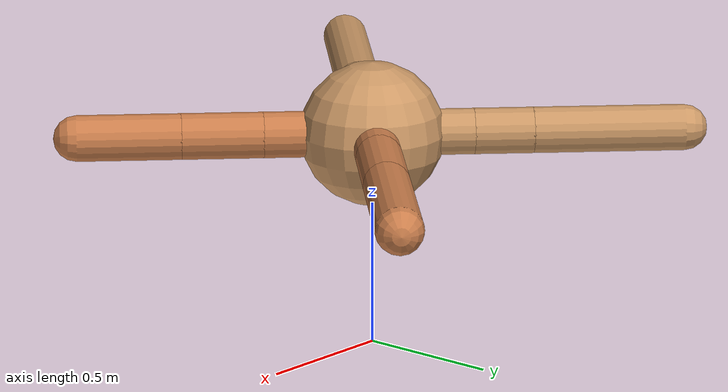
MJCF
<mujoco model="ant">
  <compiler angle="degree" coordinate="local" inertiafromgeom="true" />
  <option integrator="RK4" timestep="0.01" />
  <custom>
    <numeric data="0.0 0.0 0.55 1.0 0.0 0.0 0.0 0.0 1.0 0.0 -1.0 0.0 -1.0 0.0 1.0" name="init_qpos" />
  </custom>
  <default>
    <joint armature="1" damping="1" limited="true" />
    <geom conaffinity="0" condim="3" density="5.0" friction="1.5 0.1 0.1" margin="0.01" rgba="0.8 0.6 0.4 1" />
  </default>
  <worldbody>
    <body name="torso" pos="0 0 0.75">
      <geom name="torso_geom" pos="0 0 0" size="0.25" type="sphere" />

      <body name="front_left_leg" pos="0 0 0">
        <geom fromto="0.0 0.0 0.0 0.2288871213289262 0.2288871213289262 0.0" name="aux_1_geom" size="0.08" type="capsule" rgba=".8 .5 .3 1" />
        <body name="aux_1" pos="0.2288871213289262 0.2288871213289262 0.0">
          <joint axis="0 0 1" name="hip_1" pos="0.0 0.0 0.0" range="-40 40" type="hinge" />
          <geom fromto="0.0 0.0 0.0 0.24282443434879292 0.24282443434879292 0.0" name="left_leg_geom" size="0.08" type="capsule" rgba=".8 .5 .3 1" />
          <body pos="0.24282443434879292 0.24282443434879292 0.0" name="front_left_foot">
            <joint axis="-1 1 0" name="ankle_1" pos="0.0 0.0 0.0" range="30 100" type="hinge" />
            <geom fromto="0.0 0.0 0.0 0.3869812872063812 0.3869812872063812 0.0" name="left_ankle_geom" size="0.08" type="capsule" rgba=".8 .5 .3 1" />
          </body>
        </body>
      </body>
      <body name="front_right_leg" pos="0 0 0">
        <geom fromto="0.0 0.0 0.0 -0.2480499820861437 0.2480499820861437 0.0" name="aux_2_geom" size="0.08" type="capsule" />
        <body name="aux_2" pos="-0.2480499820861437 0.2480499820861437 0.0">
          <joint axis="0 0 1" name="hip_2" pos="0.0 0.0 0.0" range="-40 40" type="hinge" />
          <geom fromto="0.0 0.0 0.0 -0.14507752653287795 0.14507752653287795 0.0" name="right_leg_geom" size="0.08" type="capsule" />
          <body pos="-0.14507752653287795 0.14507752653287795 0.0" name="front_right_foot">
            <joint axis="1 1 0" name="ankle_2" pos="0.0 0.0 0.0" range="-100 -30" type="hinge" />
            <geom fromto="0.0 0.0 0.0 -0.37100291227646703 0.37100291227646703 0.0" name="right_ankle_geom" size="0.08" type="capsule" />
          </body>
        </body>
      </body>
      <body name="left_back_leg" pos="0 0 0">
        <geom fromto="0.0 0.0 0.0 -0.25758876347253085 -0.25758876347253085 0.0" name="aux_3_geom" size="0.08" type="capsule" />
        <body name="aux_3" pos="-0.25758876347253085 -0.25758876347253085 0.0">
          <joint axis="0 0 1" name="hip_3" pos="0.0 0.0 0.0" range="-40 40" type="hinge" />
          <geom fromto="0.0 0.0 0.0 -0.23849506437367707 -0.23849506437367707 0.0" name="back_leg_geom" size="0.08" type="capsule" />
          <body pos="-0.23849506437367707 -0.23849506437367707 0.0" name="left_back_foot">
            <joint axis="-1 1 0" name="ankle_3" pos="0.0 0.0 0.0" range="-100 -30" type="hinge" />
            <geom fromto="0.0 0.0 0.0 -0.5149908787922891 -0.5149908787922891 0.0" name="third_ankle_geom" size="0.08" type="capsule" />
          </body>
        </body>
      </body>
      <body name="right_back_leg" pos="0 0 0">
        <geom fromto="0.0 0.0 0.0 0.2647970978597937 -0.2647970978597937 0.0" name="aux_4_geom" size="0.08" type="capsule" rgba=".8 .5 .3 1" />
        <body name="aux_4" pos="0.2647970978597937 -0.2647970978597937 0.0">
          <joint axis="0 0 1" name="hip_4" pos="0.0 0.0 0.0" range="-40 40" type="hinge" />
          <geom fromto="0.0 0.0 0.0 0.19963913171497094 -0.19963913171497094 0.0" name="rightback_leg_geom" size="0.08" type="capsule" rgba=".8 .5 .3 1" />
          <body pos="0.19963913171497094 -0.19963913171497094 0.0" name="right_back_foot">
            <joint axis="1 1 0" name="ankle_4" pos="0.0 0.0 0.0" range="30 100" type="hinge" />
            <geom fromto="0.0 0.0 0.0 0.25384683215425113 -0.25384683215425113 0.0" name="fourth_ankle_geom" size="0.08" type="capsule" rgba=".8 .5 .3 1" />
          </body>
        </body>
      </body>
    </body>
  </worldbody>
  <actuator>
    <motor ctrllimited="true" ctrlrange="-1.0 1.0" joint="hip_4" gear="150" />
    <motor ctrllimited="true" ctrlrange="-1.0 1.0" joint="ankle_4" gear="150" />
    <motor ctrllimited="true" ctrlrange="-1.0 1.0" joint="hip_1" gear="150" />
    <motor ctrllimited="true" ctrlrange="-1.0 1.0" joint="ankle_1" gear="150" />
    <motor ctrllimited="true" ctrlrange="-1.0 1.0" joint="hip_2" gear="150" />
    <motor ctrllimited="true" ctrlrange="-1.0 1.0" joint="ankle_2" gear="150" />
    <motor ctrllimited="true" ctrlrange="-1.0 1.0" joint="hip_3" gear="150" />
    <motor ctrllimited="true" ctrlrange="-1.0 1.0" joint="ankle_3" gear="150" />
  </actuator>
</mujoco>
